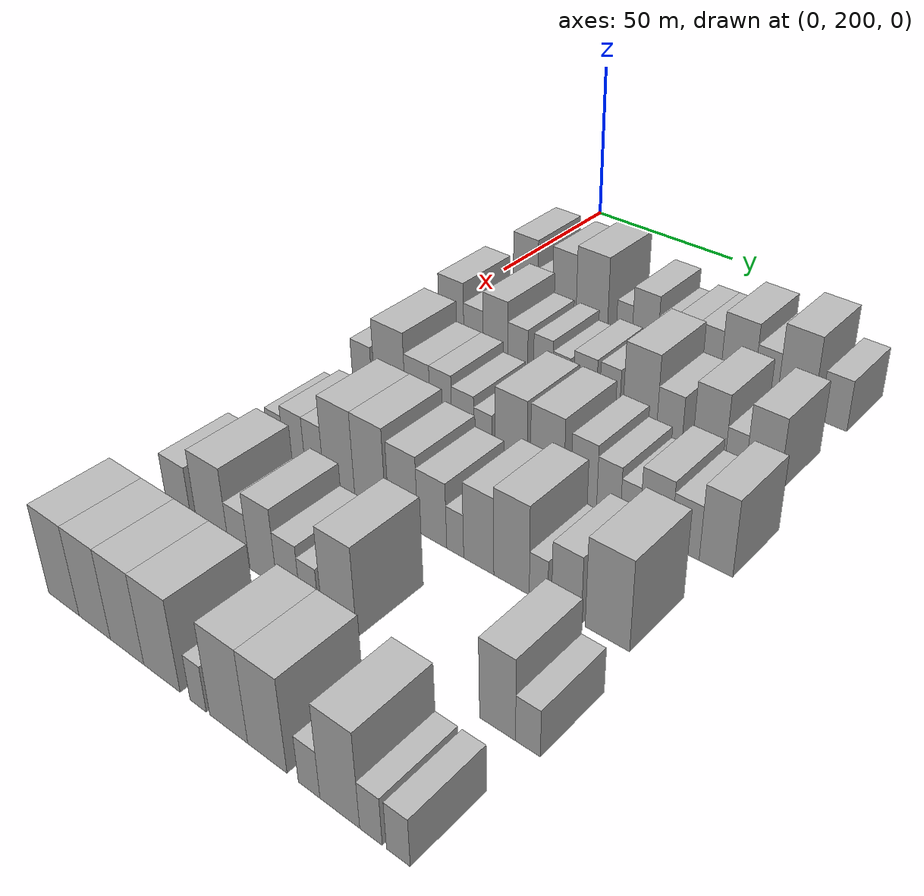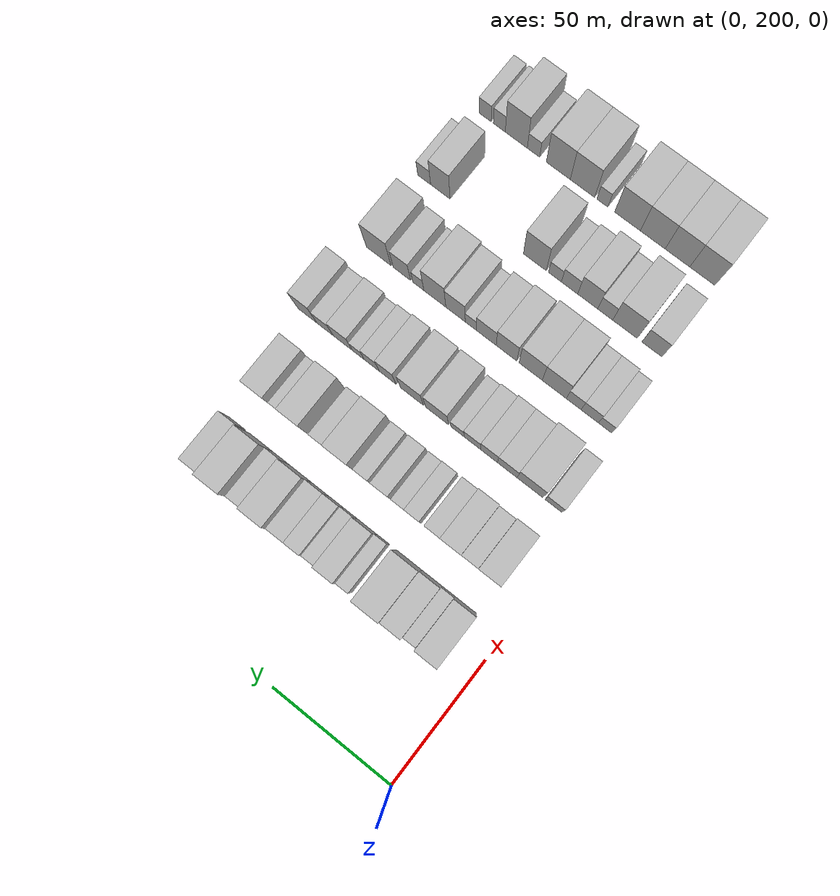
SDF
<sdf version="1.6">
 <world name="default">
  <model name="building_87">
   <static>1</static>
   <pose>50.0000 216.3549 0 0.000000 0.000000 0.000000</pose>
   <link name="link">
    <pose>0 0 10.50 0 0 0</pose>
    <collision name="collision"><geometry><box><size>20.0000 9.0935 21.0000</size></box></geometry></collision>
    <visual name="visual">
     <cast_shadows>0</cast_shadows>
     <geometry><box><size>20.0000 9.0935 21.0000</size></box></geometry>
     <material>
      <script>
       <uri>model://HANNAS_wall/materials/scripts</uri>
       <uri>model://HANNAS_wall/materials/textures</uri>
       <name>vrc/HANNAS_wall</name>
      </script>
     </material>
    </visual>
   </link>
  </model>
  <model name="building_88">
   <static>1</static>
   <pose>50.0000 223.5654 0 0.000000 0.000000 0.000000</pose>
   <link name="link">
    <pose>0 0 6.00 0 0 0</pose>
    <collision name="collision"><geometry><box><size>20.0000 5.3274 12.0000</size></box></geometry></collision>
    <visual name="visual">
     <cast_shadows>0</cast_shadows>
     <geometry><box><size>20.0000 5.3274 12.0000</size></box></geometry>
     <material>
      <script>
       <uri>model://HANNAS_wall/materials/scripts</uri>
       <uri>model://HANNAS_wall/materials/textures</uri>
       <name>vrc/HANNAS_wall</name>
      </script>
     </material>
    </visual>
   </link>
  </model>
  <model name="building_89">
   <static>1</static>
   <pose>50.0000 230.4647 0 0.000000 0.000000 0.000000</pose>
   <link name="link">
    <pose>0 0 10.50 0 0 0</pose>
    <collision name="collision"><geometry><box><size>20.0000 8.4712 21.0000</size></box></geometry></collision>
    <visual name="visual">
     <cast_shadows>0</cast_shadows>
     <geometry><box><size>20.0000 8.4712 21.0000</size></box></geometry>
     <material>
      <script>
       <uri>model://HANNAS_wall/materials/scripts</uri>
       <uri>model://HANNAS_wall/materials/textures</uri>
       <name>vrc/HANNAS_wall</name>
      </script>
     </material>
    </visual>
   </link>
  </model>
  <model name="building_90">
   <static>1</static>
   <pose>50.0000 240.1849 0 0.000000 0.000000 0.000000</pose>
   <link name="link">
    <pose>0 0 12.00 0 0 0</pose>
    <collision name="collision"><geometry><box><size>20.0000 10.9693 24.0000</size></box></geometry></collision>
    <visual name="visual">
     <cast_shadows>0</cast_shadows>
     <geometry><box><size>20.0000 10.9693 24.0000</size></box></geometry>
     <material>
      <script>
       <uri>model://HANNAS_wall/materials/scripts</uri>
       <uri>model://HANNAS_wall/materials/textures</uri>
       <name>vrc/HANNAS_wall</name>
      </script>
     </material>
    </visual>
   </link>
  </model>
  <model name="building_91">
   <static>1</static>
   <pose>50.0000 251.3293 0 0.000000 0.000000 0.000000</pose>
   <link name="link">
    <pose>0 0 6.00 0 0 0</pose>
    <collision name="collision"><geometry><box><size>20.0000 5.3196 12.0000</size></box></geometry></collision>
    <visual name="visual">
     <cast_shadows>0</cast_shadows>
     <geometry><box><size>20.0000 5.3196 12.0000</size></box></geometry>
     <material>
      <script>
       <uri>model://HANNAS_wall/materials/scripts</uri>
       <uri>model://HANNAS_wall/materials/textures</uri>
       <name>vrc/HANNAS_wall</name>
      </script>
     </material>
    </visual>
   </link>
  </model>
  <model name="building_92">
   <static>1</static>
   <pose>50.0000 258.2015 0 0.000000 0.000000 0.000000</pose>
   <link name="link">
    <pose>0 0 9.00 0 0 0</pose>
    <collision name="collision"><geometry><box><size>20.0000 8.4248 18.0000</size></box></geometry></collision>
    <visual name="visual">
     <cast_shadows>0</cast_shadows>
     <geometry><box><size>20.0000 8.4248 18.0000</size></box></geometry>
     <material>
      <script>
       <uri>model://HANNAS_wall/materials/scripts</uri>
       <uri>model://HANNAS_wall/materials/textures</uri>
       <name>vrc/HANNAS_wall</name>
      </script>
     </material>
    </visual>
   </link>
  </model>
  <model name="building_93">
   <static>1</static>
   <pose>50.0000 265.3493 0 0.000000 0.000000 0.000000</pose>
   <link name="link">
    <pose>0 0 6.00 0 0 0</pose>
    <collision name="collision"><geometry><box><size>20.0000 5.8709 12.0000</size></box></geometry></collision>
    <visual name="visual">
     <cast_shadows>0</cast_shadows>
     <geometry><box><size>20.0000 5.8709 12.0000</size></box></geometry>
     <material>
      <script>
       <uri>model://HANNAS_wall/materials/scripts</uri>
       <uri>model://HANNAS_wall/materials/textures</uri>
       <name>vrc/HANNAS_wall</name>
      </script>
     </material>
    </visual>
   </link>
  </model>
  <model name="building_94">
   <static>1</static>
   <pose>50.0000 271.6500 0 0.000000 0.000000 0.000000</pose>
   <link name="link">
    <pose>0 0 7.50 0 0 0</pose>
    <collision name="collision"><geometry><box><size>20.0000 6.7306 15.0000</size></box></geometry></collision>
    <visual name="visual">
     <cast_shadows>0</cast_shadows>
     <geometry><box><size>20.0000 6.7306 15.0000</size></box></geometry>
     <material>
      <script>
       <uri>model://HANNAS_wall/materials/scripts</uri>
       <uri>model://HANNAS_wall/materials/textures</uri>
       <name>vrc/HANNAS_wall</name>
      </script>
     </material>
    </visual>
   </link>
  </model>
  <model name="building_95">
   <static>1</static>
   <pose>50.0000 278.6958 0 0.000000 0.000000 0.000000</pose>
   <link name="link">
    <pose>0 0 7.50 0 0 0</pose>
    <collision name="collision"><geometry><box><size>20.0000 7.3609 15.0000</size></box></geometry></collision>
    <visual name="visual">
     <cast_shadows>0</cast_shadows>
     <geometry><box><size>20.0000 7.3609 15.0000</size></box></geometry>
     <material>
      <script>
       <uri>model://HANNAS_wall/materials/scripts</uri>
       <uri>model://HANNAS_wall/materials/textures</uri>
       <name>vrc/HANNAS_wall</name>
      </script>
     </material>
    </visual>
   </link>
  </model>
  <model name="building_96">
   <static>1</static>
   <pose>50.0000 287.3988 0 0.000000 0.000000 0.000000</pose>
   <link name="link">
    <pose>0 0 10.50 0 0 0</pose>
    <collision name="collision"><geometry><box><size>20.0000 10.0452 21.0000</size></box></geometry></collision>
    <visual name="visual">
     <cast_shadows>0</cast_shadows>
     <geometry><box><size>20.0000 10.0452 21.0000</size></box></geometry>
     <material>
      <script>
       <uri>model://HANNAS_wall/materials/scripts</uri>
       <uri>model://HANNAS_wall/materials/textures</uri>
       <name>vrc/HANNAS_wall</name>
      </script>
     </material>
    </visual>
   </link>
  </model>
  <model name="building_97">
   <static>1</static>
   <pose>50.0000 295.8725 0 0.000000 0.000000 0.000000</pose>
   <link name="link">
    <pose>0 0 7.50 0 0 0</pose>
    <collision name="collision"><geometry><box><size>20.0000 6.9023 15.0000</size></box></geometry></collision>
    <visual name="visual">
     <cast_shadows>0</cast_shadows>
     <geometry><box><size>20.0000 6.9023 15.0000</size></box></geometry>
     <material>
      <script>
       <uri>model://HANNAS_wall/materials/scripts</uri>
       <uri>model://HANNAS_wall/materials/textures</uri>
       <name>vrc/HANNAS_wall</name>
      </script>
     </material>
    </visual>
   </link>
  </model>
  <model name="building_98">
   <static>1</static>
   <pose>50.0000 304.4856 0 0.000000 0.000000 0.000000</pose>
   <link name="link">
    <pose>0 0 12.00 0 0 0</pose>
    <collision name="collision"><geometry><box><size>20.0000 10.3239 24.0000</size></box></geometry></collision>
    <visual name="visual">
     <cast_shadows>0</cast_shadows>
     <geometry><box><size>20.0000 10.3239 24.0000</size></box></geometry>
     <material>
      <script>
       <uri>model://HANNAS_wall/materials/scripts</uri>
       <uri>model://HANNAS_wall/materials/textures</uri>
       <name>vrc/HANNAS_wall</name>
      </script>
     </material>
    </visual>
   </link>
  </model>
  <model name="building_99">
   <static>1</static>
   <pose>50.0000 315.3919 0 0.000000 0.000000 0.000000</pose>
   <link name="link">
    <pose>0 0 7.50 0 0 0</pose>
    <collision name="collision"><geometry><box><size>20.0000 7.4886 15.0000</size></box></geometry></collision>
    <visual name="visual">
     <cast_shadows>0</cast_shadows>
     <geometry><box><size>20.0000 7.4886 15.0000</size></box></geometry>
     <material>
      <script>
       <uri>model://HANNAS_wall/materials/scripts</uri>
       <uri>model://HANNAS_wall/materials/textures</uri>
       <name>vrc/HANNAS_wall</name>
      </script>
     </material>
    </visual>
   </link>
  </model>
  <model name="building_215">
   <static>1</static>
   <pose>82.0000 215.9079 0 0.000000 0.000000 0.000000</pose>
   <link name="link">
    <pose>0 0 10.50 0 0 0</pose>
    <collision name="collision"><geometry><box><size>20.0000 9.0055 21.0000</size></box></geometry></collision>
    <visual name="visual">
     <cast_shadows>0</cast_shadows>
     <geometry><box><size>20.0000 9.0055 21.0000</size></box></geometry>
     <material>
      <script>
       <uri>model://HANNAS_wall/materials/scripts</uri>
       <uri>model://HANNAS_wall/materials/textures</uri>
       <name>vrc/HANNAS_wall</name>
      </script>
     </material>
    </visual>
   </link>
  </model>
  <model name="building_216">
   <static>1</static>
   <pose>82.0000 223.8811 0 0.000000 0.000000 0.000000</pose>
   <link name="link">
    <pose>0 0 7.50 0 0 0</pose>
    <collision name="collision"><geometry><box><size>20.0000 6.9409 15.0000</size></box></geometry></collision>
    <visual name="visual">
     <cast_shadows>0</cast_shadows>
     <geometry><box><size>20.0000 6.9409 15.0000</size></box></geometry>
     <material>
      <script>
       <uri>model://HANNAS_wall/materials/scripts</uri>
       <uri>model://HANNAS_wall/materials/textures</uri>
       <name>vrc/HANNAS_wall</name>
      </script>
     </material>
    </visual>
   </link>
  </model>
  <model name="building_217">
   <static>1</static>
   <pose>82.0000 231.6393 0 0.000000 0.000000 0.000000</pose>
   <link name="link">
    <pose>0 0 10.50 0 0 0</pose>
    <collision name="collision"><geometry><box><size>20.0000 8.5755 21.0000</size></box></geometry></collision>
    <visual name="visual">
     <cast_shadows>0</cast_shadows>
     <geometry><box><size>20.0000 8.5755 21.0000</size></box></geometry>
     <material>
      <script>
       <uri>model://HANNAS_wall/materials/scripts</uri>
       <uri>model://HANNAS_wall/materials/textures</uri>
       <name>vrc/HANNAS_wall</name>
      </script>
     </material>
    </visual>
   </link>
  </model>
  <model name="building_218">
   <static>1</static>
   <pose>82.0000 239.3026 0 0.000000 0.000000 0.000000</pose>
   <link name="link">
    <pose>0 0 7.50 0 0 0</pose>
    <collision name="collision"><geometry><box><size>20.0000 6.7512 15.0000</size></box></geometry></collision>
    <visual name="visual">
     <cast_shadows>0</cast_shadows>
     <geometry><box><size>20.0000 6.7512 15.0000</size></box></geometry>
     <material>
      <script>
       <uri>model://HANNAS_wall/materials/scripts</uri>
       <uri>model://HANNAS_wall/materials/textures</uri>
       <name>vrc/HANNAS_wall</name>
      </script>
     </material>
    </visual>
   </link>
  </model>
  <model name="building_219">
   <static>1</static>
   <pose>82.0000 247.8361 0 0.000000 0.000000 0.000000</pose>
   <link name="link">
    <pose>0 0 7.50 0 0 0</pose>
    <collision name="collision"><geometry><box><size>20.0000 6.3158 15.0000</size></box></geometry></collision>
    <visual name="visual">
     <cast_shadows>0</cast_shadows>
     <geometry><box><size>20.0000 6.3158 15.0000</size></box></geometry>
     <material>
      <script>
       <uri>model://HANNAS_wall/materials/scripts</uri>
       <uri>model://HANNAS_wall/materials/textures</uri>
       <name>vrc/HANNAS_wall</name>
      </script>
     </material>
    </visual>
   </link>
  </model>
  <model name="building_220">
   <static>1</static>
   <pose>82.0000 253.8731 0 0.000000 0.000000 0.000000</pose>
   <link name="link">
    <pose>0 0 6.00 0 0 0</pose>
    <collision name="collision"><geometry><box><size>20.0000 5.7582 12.0000</size></box></geometry></collision>
    <visual name="visual">
     <cast_shadows>0</cast_shadows>
     <geometry><box><size>20.0000 5.7582 12.0000</size></box></geometry>
     <material>
      <script>
       <uri>model://HANNAS_wall/materials/scripts</uri>
       <uri>model://HANNAS_wall/materials/textures</uri>
       <name>vrc/HANNAS_wall</name>
      </script>
     </material>
    </visual>
   </link>
  </model>
  <model name="building_221">
   <static>1</static>
   <pose>82.0000 261.4055 0 0.000000 0.000000 0.000000</pose>
   <link name="link">
    <pose>0 0 7.50 0 0 0</pose>
    <collision name="collision"><geometry><box><size>20.0000 7.3066 15.0000</size></box></geometry></collision>
    <visual name="visual">
     <cast_shadows>0</cast_shadows>
     <geometry><box><size>20.0000 7.3066 15.0000</size></box></geometry>
     <material>
      <script>
       <uri>model://HANNAS_wall/materials/scripts</uri>
       <uri>model://HANNAS_wall/materials/textures</uri>
       <name>vrc/HANNAS_wall</name>
      </script>
     </material>
    </visual>
   </link>
  </model>
  <model name="building_222">
   <static>1</static>
   <pose>82.0000 269.1686 0 0.000000 0.000000 0.000000</pose>
   <link name="link">
    <pose>0 0 7.50 0 0 0</pose>
    <collision name="collision"><geometry><box><size>20.0000 6.2196 15.0000</size></box></geometry></collision>
    <visual name="visual">
     <cast_shadows>0</cast_shadows>
     <geometry><box><size>20.0000 6.2196 15.0000</size></box></geometry>
     <material>
      <script>
       <uri>model://HANNAS_wall/materials/scripts</uri>
       <uri>model://HANNAS_wall/materials/textures</uri>
       <name>vrc/HANNAS_wall</name>
      </script>
     </material>
    </visual>
   </link>
  </model>
  <model name="building_223">
   <static>1</static>
   <pose>82.0000 278.3743 0 0.000000 0.000000 0.000000</pose>
   <link name="link">
    <pose>0 0 12.00 0 0 0</pose>
    <collision name="collision"><geometry><box><size>20.0000 10.1920 24.0000</size></box></geometry></collision>
    <visual name="visual">
     <cast_shadows>0</cast_shadows>
     <geometry><box><size>20.0000 10.1920 24.0000</size></box></geometry>
     <material>
      <script>
       <uri>model://HANNAS_wall/materials/scripts</uri>
       <uri>model://HANNAS_wall/materials/textures</uri>
       <name>vrc/HANNAS_wall</name>
      </script>
     </material>
    </visual>
   </link>
  </model>
  <model name="building_224">
   <static>1</static>
   <pose>82.0000 287.2166 0 0.000000 0.000000 0.000000</pose>
   <link name="link">
    <pose>0 0 7.50 0 0 0</pose>
    <collision name="collision"><geometry><box><size>20.0000 7.4926 15.0000</size></box></geometry></collision>
    <visual name="visual">
     <cast_shadows>0</cast_shadows>
     <geometry><box><size>20.0000 7.4926 15.0000</size></box></geometry>
     <material>
      <script>
       <uri>model://HANNAS_wall/materials/scripts</uri>
       <uri>model://HANNAS_wall/materials/textures</uri>
       <name>vrc/HANNAS_wall</name>
      </script>
     </material>
    </visual>
   </link>
  </model>
  <model name="building_225">
   <static>1</static>
   <pose>82.0000 298.5455 0 0.000000 0.000000 0.000000</pose>
   <link name="link">
    <pose>0 0 10.50 0 0 0</pose>
    <collision name="collision"><geometry><box><size>20.0000 9.1652 21.0000</size></box></geometry></collision>
    <visual name="visual">
     <cast_shadows>0</cast_shadows>
     <geometry><box><size>20.0000 9.1652 21.0000</size></box></geometry>
     <material>
      <script>
       <uri>model://HANNAS_wall/materials/scripts</uri>
       <uri>model://HANNAS_wall/materials/textures</uri>
       <name>vrc/HANNAS_wall</name>
      </script>
     </material>
    </visual>
   </link>
  </model>
  <model name="building_226">
   <static>1</static>
   <pose>82.0000 305.9645 0 0.000000 0.000000 0.000000</pose>
   <link name="link">
    <pose>0 0 6.00 0 0 0</pose>
    <collision name="collision"><geometry><box><size>20.0000 5.6727 12.0000</size></box></geometry></collision>
    <visual name="visual">
     <cast_shadows>0</cast_shadows>
     <geometry><box><size>20.0000 5.6727 12.0000</size></box></geometry>
     <material>
      <script>
       <uri>model://HANNAS_wall/materials/scripts</uri>
       <uri>model://HANNAS_wall/materials/textures</uri>
       <name>vrc/HANNAS_wall</name>
      </script>
     </material>
    </visual>
   </link>
  </model>
  <model name="building_227">
   <static>1</static>
   <pose>82.0000 313.4200 0 0.000000 0.000000 0.000000</pose>
   <link name="link">
    <pose>0 0 10.50 0 0 0</pose>
    <collision name="collision"><geometry><box><size>20.0000 9.2383 21.0000</size></box></geometry></collision>
    <visual name="visual">
     <cast_shadows>0</cast_shadows>
     <geometry><box><size>20.0000 9.2383 21.0000</size></box></geometry>
     <material>
      <script>
       <uri>model://HANNAS_wall/materials/scripts</uri>
       <uri>model://HANNAS_wall/materials/textures</uri>
       <name>vrc/HANNAS_wall</name>
      </script>
     </material>
    </visual>
   </link>
  </model>
  <model name="building_337">
   <static>1</static>
   <pose>114.0000 213.1651 0 0.000000 0.000000 0.000000</pose>
   <link name="link">
    <pose>0 0 7.50 0 0 0</pose>
    <collision name="collision"><geometry><box><size>20.0000 7.0536 15.0000</size></box></geometry></collision>
    <visual name="visual">
     <cast_shadows>0</cast_shadows>
     <geometry><box><size>20.0000 7.0536 15.0000</size></box></geometry>
     <material>
      <script>
       <uri>model://HANNAS_wall/materials/scripts</uri>
       <uri>model://HANNAS_wall/materials/textures</uri>
       <name>vrc/HANNAS_wall</name>
      </script>
     </material>
    </visual>
   </link>
  </model>
  <model name="building_338">
   <static>1</static>
   <pose>114.0000 223.1370 0 0.000000 0.000000 0.000000</pose>
   <link name="link">
    <pose>0 0 12.00 0 0 0</pose>
    <collision name="collision"><geometry><box><size>20.0000 10.8902 24.0000</size></box></geometry></collision>
    <visual name="visual">
     <cast_shadows>0</cast_shadows>
     <geometry><box><size>20.0000 10.8902 24.0000</size></box></geometry>
     <material>
      <script>
       <uri>model://HANNAS_wall/materials/scripts</uri>
       <uri>model://HANNAS_wall/materials/textures</uri>
       <name>vrc/HANNAS_wall</name>
      </script>
     </material>
    </visual>
   </link>
  </model>
  <model name="building_339">
   <static>1</static>
   <pose>114.0000 232.8138 0 0.000000 0.000000 0.000000</pose>
   <link name="link">
    <pose>0 0 9.00 0 0 0</pose>
    <collision name="collision"><geometry><box><size>20.0000 8.4633 18.0000</size></box></geometry></collision>
    <visual name="visual">
     <cast_shadows>0</cast_shadows>
     <geometry><box><size>20.0000 8.4633 18.0000</size></box></geometry>
     <material>
      <script>
       <uri>model://HANNAS_wall/materials/scripts</uri>
       <uri>model://HANNAS_wall/materials/textures</uri>
       <name>vrc/HANNAS_wall</name>
      </script>
     </material>
    </visual>
   </link>
  </model>
  <model name="building_340">
   <static>1</static>
   <pose>114.0000 240.6525 0 0.000000 0.000000 0.000000</pose>
   <link name="link">
    <pose>0 0 9.00 0 0 0</pose>
    <collision name="collision"><geometry><box><size>20.0000 7.2143 18.0000</size></box></geometry></collision>
    <visual name="visual">
     <cast_shadows>0</cast_shadows>
     <geometry><box><size>20.0000 7.2143 18.0000</size></box></geometry>
     <material>
      <script>
       <uri>model://HANNAS_wall/materials/scripts</uri>
       <uri>model://HANNAS_wall/materials/textures</uri>
       <name>vrc/HANNAS_wall</name>
      </script>
     </material>
    </visual>
   </link>
  </model>
  <model name="building_341">
   <static>1</static>
   <pose>114.0000 247.8487 0 0.000000 0.000000 0.000000</pose>
   <link name="link">
    <pose>0 0 7.50 0 0 0</pose>
    <collision name="collision"><geometry><box><size>20.0000 7.1780 15.0000</size></box></geometry></collision>
    <visual name="visual">
     <cast_shadows>0</cast_shadows>
     <geometry><box><size>20.0000 7.1780 15.0000</size></box></geometry>
     <material>
      <script>
       <uri>model://HANNAS_wall/materials/scripts</uri>
       <uri>model://HANNAS_wall/materials/textures</uri>
       <name>vrc/HANNAS_wall</name>
      </script>
     </material>
    </visual>
   </link>
  </model>
  <model name="building_342">
   <static>1</static>
   <pose>114.0000 254.2826 0 0.000000 0.000000 0.000000</pose>
   <link name="link">
    <pose>0 0 6.00 0 0 0</pose>
    <collision name="collision"><geometry><box><size>20.0000 5.6898 12.0000</size></box></geometry></collision>
    <visual name="visual">
     <cast_shadows>0</cast_shadows>
     <geometry><box><size>20.0000 5.6898 12.0000</size></box></geometry>
     <material>
      <script>
       <uri>model://HANNAS_wall/materials/scripts</uri>
       <uri>model://HANNAS_wall/materials/textures</uri>
       <name>vrc/HANNAS_wall</name>
      </script>
     </material>
    </visual>
   </link>
  </model>
  <model name="building_343">
   <static>1</static>
   <pose>114.0000 263.0938 0 0.000000 0.000000 0.000000</pose>
   <link name="link">
    <pose>0 0 10.50 0 0 0</pose>
    <collision name="collision"><geometry><box><size>20.0000 9.9326 21.0000</size></box></geometry></collision>
    <visual name="visual">
     <cast_shadows>0</cast_shadows>
     <geometry><box><size>20.0000 9.9326 21.0000</size></box></geometry>
     <material>
      <script>
       <uri>model://HANNAS_wall/materials/scripts</uri>
       <uri>model://HANNAS_wall/materials/textures</uri>
       <name>vrc/HANNAS_wall</name>
      </script>
     </material>
    </visual>
   </link>
  </model>
  <model name="building_344">
   <static>1</static>
   <pose>114.0000 274.0446 0 0.000000 0.000000 0.000000</pose>
   <link name="link">
    <pose>0 0 10.50 0 0 0</pose>
    <collision name="collision"><geometry><box><size>20.0000 9.9690 21.0000</size></box></geometry></collision>
    <visual name="visual">
     <cast_shadows>0</cast_shadows>
     <geometry><box><size>20.0000 9.9690 21.0000</size></box></geometry>
     <material>
      <script>
       <uri>model://HANNAS_wall/materials/scripts</uri>
       <uri>model://HANNAS_wall/materials/textures</uri>
       <name>vrc/HANNAS_wall</name>
      </script>
     </material>
    </visual>
   </link>
  </model>
  <model name="building_345">
   <static>1</static>
   <pose>114.0000 284.7476 0 0.000000 0.000000 0.000000</pose>
   <link name="link">
    <pose>0 0 9.00 0 0 0</pose>
    <collision name="collision"><geometry><box><size>20.0000 7.4371 18.0000</size></box></geometry></collision>
    <visual name="visual">
     <cast_shadows>0</cast_shadows>
     <geometry><box><size>20.0000 7.4371 18.0000</size></box></geometry>
     <material>
      <script>
       <uri>model://HANNAS_wall/materials/scripts</uri>
       <uri>model://HANNAS_wall/materials/textures</uri>
       <name>vrc/HANNAS_wall</name>
      </script>
     </material>
    </visual>
   </link>
  </model>
  <model name="building_346">
   <static>1</static>
   <pose>114.0000 291.7757 0 0.000000 0.000000 0.000000</pose>
   <link name="link">
    <pose>0 0 7.50 0 0 0</pose>
    <collision name="collision"><geometry><box><size>20.0000 6.6192 15.0000</size></box></geometry></collision>
    <visual name="visual">
     <cast_shadows>0</cast_shadows>
     <geometry><box><size>20.0000 6.6192 15.0000</size></box></geometry>
     <material>
      <script>
       <uri>model://HANNAS_wall/materials/scripts</uri>
       <uri>model://HANNAS_wall/materials/textures</uri>
       <name>vrc/HANNAS_wall</name>
      </script>
     </material>
    </visual>
   </link>
  </model>
  <model name="building_347">
   <static>1</static>
   <pose>114.0000 297.7409 0 0.000000 0.000000 0.000000</pose>
   <link name="link">
    <pose>0 0 6.00 0 0 0</pose>
    <collision name="collision"><geometry><box><size>20.0000 5.3111 12.0000</size></box></geometry></collision>
    <visual name="visual">
     <cast_shadows>0</cast_shadows>
     <geometry><box><size>20.0000 5.3111 12.0000</size></box></geometry>
     <material>
      <script>
       <uri>model://HANNAS_wall/materials/scripts</uri>
       <uri>model://HANNAS_wall/materials/textures</uri>
       <name>vrc/HANNAS_wall</name>
      </script>
     </material>
    </visual>
   </link>
  </model>
  <model name="building_348">
   <static>1</static>
   <pose>114.0000 304.6243 0 0.000000 0.000000 0.000000</pose>
   <link name="link">
    <pose>0 0 9.00 0 0 0</pose>
    <collision name="collision"><geometry><box><size>20.0000 8.4557 18.0000</size></box></geometry></collision>
    <visual name="visual">
     <cast_shadows>0</cast_shadows>
     <geometry><box><size>20.0000 8.4557 18.0000</size></box></geometry>
     <material>
      <script>
       <uri>model://HANNAS_wall/materials/scripts</uri>
       <uri>model://HANNAS_wall/materials/textures</uri>
       <name>vrc/HANNAS_wall</name>
      </script>
     </material>
    </visual>
   </link>
  </model>
  <model name="building_349">
   <static>1</static>
   <pose>114.0000 312.5036 0 0.000000 0.000000 0.000000</pose>
   <link name="link">
    <pose>0 0 7.50 0 0 0</pose>
    <collision name="collision"><geometry><box><size>20.0000 7.3030 15.0000</size></box></geometry></collision>
    <visual name="visual">
     <cast_shadows>0</cast_shadows>
     <geometry><box><size>20.0000 7.3030 15.0000</size></box></geometry>
     <material>
      <script>
       <uri>model://HANNAS_wall/materials/scripts</uri>
       <uri>model://HANNAS_wall/materials/textures</uri>
       <name>vrc/HANNAS_wall</name>
      </script>
     </material>
    </visual>
   </link>
  </model>
  <model name="building_350">
   <static>1</static>
   <pose>114.0000 320.4050 0 0.000000 0.000000 0.000000</pose>
   <link name="link">
    <pose>0 0 10.50 0 0 0</pose>
    <collision name="collision"><geometry><box><size>20.0000 8.4999 21.0000</size></box></geometry></collision>
    <visual name="visual">
     <cast_shadows>0</cast_shadows>
     <geometry><box><size>20.0000 8.4999 21.0000</size></box></geometry>
     <material>
      <script>
       <uri>model://HANNAS_wall/materials/scripts</uri>
       <uri>model://HANNAS_wall/materials/textures</uri>
       <name>vrc/HANNAS_wall</name>
      </script>
     </material>
    </visual>
   </link>
  </model>
  <model name="building_452">
   <static>1</static>
   <pose>146.0000 215.2975 0 0.000000 0.000000 0.000000</pose>
   <link name="link">
    <pose>0 0 6.00 0 0 0</pose>
    <collision name="collision"><geometry><box><size>20.0000 5.6191 12.0000</size></box></geometry></collision>
    <visual name="visual">
     <cast_shadows>0</cast_shadows>
     <geometry><box><size>20.0000 5.6191 12.0000</size></box></geometry>
     <material>
      <script>
       <uri>model://HANNAS_wall/materials/scripts</uri>
       <uri>model://HANNAS_wall/materials/textures</uri>
       <name>vrc/HANNAS_wall</name>
      </script>
     </material>
    </visual>
   </link>
  </model>
  <model name="building_453">
   <static>1</static>
   <pose>146.0000 221.8192 0 0.000000 0.000000 0.000000</pose>
   <link name="link">
    <pose>0 0 7.50 0 0 0</pose>
    <collision name="collision"><geometry><box><size>20.0000 7.4244 15.0000</size></box></geometry></collision>
    <visual name="visual">
     <cast_shadows>0</cast_shadows>
     <geometry><box><size>20.0000 7.4244 15.0000</size></box></geometry>
     <material>
      <script>
       <uri>model://HANNAS_wall/materials/scripts</uri>
       <uri>model://HANNAS_wall/materials/textures</uri>
       <name>vrc/HANNAS_wall</name>
      </script>
     </material>
    </visual>
   </link>
  </model>
  <model name="building_454">
   <static>1</static>
   <pose>146.0000 228.6865 0 0.000000 0.000000 0.000000</pose>
   <link name="link">
    <pose>0 0 7.50 0 0 0</pose>
    <collision name="collision"><geometry><box><size>20.0000 6.3102 15.0000</size></box></geometry></collision>
    <visual name="visual">
     <cast_shadows>0</cast_shadows>
     <geometry><box><size>20.0000 6.3102 15.0000</size></box></geometry>
     <material>
      <script>
       <uri>model://HANNAS_wall/materials/scripts</uri>
       <uri>model://HANNAS_wall/materials/textures</uri>
       <name>vrc/HANNAS_wall</name>
      </script>
     </material>
    </visual>
   </link>
  </model>
  <model name="building_455">
   <static>1</static>
   <pose>146.0000 237.0497 0 0.000000 0.000000 0.000000</pose>
   <link name="link">
    <pose>0 0 12.00 0 0 0</pose>
    <collision name="collision"><geometry><box><size>20.0000 10.4162 24.0000</size></box></geometry></collision>
    <visual name="visual">
     <cast_shadows>0</cast_shadows>
     <geometry><box><size>20.0000 10.4162 24.0000</size></box></geometry>
     <material>
      <script>
       <uri>model://HANNAS_wall/materials/scripts</uri>
       <uri>model://HANNAS_wall/materials/textures</uri>
       <name>vrc/HANNAS_wall</name>
      </script>
     </material>
    </visual>
   </link>
  </model>
  <model name="building_456">
   <static>1</static>
   <pose>146.0000 247.2807 0 0.000000 0.000000 0.000000</pose>
   <link name="link">
    <pose>0 0 12.00 0 0 0</pose>
    <collision name="collision"><geometry><box><size>20.0000 10.0458 24.0000</size></box></geometry></collision>
    <visual name="visual">
     <cast_shadows>0</cast_shadows>
     <geometry><box><size>20.0000 10.0458 24.0000</size></box></geometry>
     <material>
      <script>
       <uri>model://HANNAS_wall/materials/scripts</uri>
       <uri>model://HANNAS_wall/materials/textures</uri>
       <name>vrc/HANNAS_wall</name>
      </script>
     </material>
    </visual>
   </link>
  </model>
  <model name="building_457">
   <static>1</static>
   <pose>146.0000 257.7965 0 0.000000 0.000000 0.000000</pose>
   <link name="link">
    <pose>0 0 10.50 0 0 0</pose>
    <collision name="collision"><geometry><box><size>20.0000 8.9857 21.0000</size></box></geometry></collision>
    <visual name="visual">
     <cast_shadows>0</cast_shadows>
     <geometry><box><size>20.0000 8.9857 21.0000</size></box></geometry>
     <material>
      <script>
       <uri>model://HANNAS_wall/materials/scripts</uri>
       <uri>model://HANNAS_wall/materials/textures</uri>
       <name>vrc/HANNAS_wall</name>
      </script>
     </material>
    </visual>
   </link>
  </model>
  <model name="building_458">
   <static>1</static>
   <pose>146.0000 266.5924 0 0.000000 0.000000 0.000000</pose>
   <link name="link">
    <pose>0 0 9.00 0 0 0</pose>
    <collision name="collision"><geometry><box><size>20.0000 8.6062 18.0000</size></box></geometry></collision>
    <visual name="visual">
     <cast_shadows>0</cast_shadows>
     <geometry><box><size>20.0000 8.6062 18.0000</size></box></geometry>
     <material>
      <script>
       <uri>model://HANNAS_wall/materials/scripts</uri>
       <uri>model://HANNAS_wall/materials/textures</uri>
       <name>vrc/HANNAS_wall</name>
      </script>
     </material>
    </visual>
   </link>
  </model>
  <model name="building_459">
   <static>1</static>
   <pose>146.0000 273.3758 0 0.000000 0.000000 0.000000</pose>
   <link name="link">
    <pose>0 0 6.00 0 0 0</pose>
    <collision name="collision"><geometry><box><size>20.0000 4.9606 12.0000</size></box></geometry></collision>
    <visual name="visual">
     <cast_shadows>0</cast_shadows>
     <geometry><box><size>20.0000 4.9606 12.0000</size></box></geometry>
     <material>
      <script>
       <uri>model://HANNAS_wall/materials/scripts</uri>
       <uri>model://HANNAS_wall/materials/textures</uri>
       <name>vrc/HANNAS_wall</name>
      </script>
     </material>
    </visual>
   </link>
  </model>
  <model name="building_460">
   <static>1</static>
   <pose>146.0000 280.1520 0 0.000000 0.000000 0.000000</pose>
   <link name="link">
    <pose>0 0 10.50 0 0 0</pose>
    <collision name="collision"><geometry><box><size>20.0000 8.5919 21.0000</size></box></geometry></collision>
    <visual name="visual">
     <cast_shadows>0</cast_shadows>
     <geometry><box><size>20.0000 8.5919 21.0000</size></box></geometry>
     <material>
      <script>
       <uri>model://HANNAS_wall/materials/scripts</uri>
       <uri>model://HANNAS_wall/materials/textures</uri>
       <name>vrc/HANNAS_wall</name>
      </script>
     </material>
    </visual>
   </link>
  </model>
  <model name="building_461">
   <static>1</static>
   <pose>146.0000 289.3242 0 0.000000 0.000000 0.000000</pose>
   <link name="link">
    <pose>0 0 12.00 0 0 0</pose>
    <collision name="collision"><geometry><box><size>20.0000 9.7524 24.0000</size></box></geometry></collision>
    <visual name="visual">
     <cast_shadows>0</cast_shadows>
     <geometry><box><size>20.0000 9.7524 24.0000</size></box></geometry>
     <material>
      <script>
       <uri>model://HANNAS_wall/materials/scripts</uri>
       <uri>model://HANNAS_wall/materials/textures</uri>
       <name>vrc/HANNAS_wall</name>
      </script>
     </material>
    </visual>
   </link>
  </model>
  <model name="building_462">
   <static>1</static>
   <pose>146.0000 296.6710 0 0.000000 0.000000 0.000000</pose>
   <link name="link">
    <pose>0 0 6.00 0 0 0</pose>
    <collision name="collision"><geometry><box><size>20.0000 4.9412 12.0000</size></box></geometry></collision>
    <visual name="visual">
     <cast_shadows>0</cast_shadows>
     <geometry><box><size>20.0000 4.9412 12.0000</size></box></geometry>
     <material>
      <script>
       <uri>model://HANNAS_wall/materials/scripts</uri>
       <uri>model://HANNAS_wall/materials/textures</uri>
       <name>vrc/HANNAS_wall</name>
      </script>
     </material>
    </visual>
   </link>
  </model>
  <model name="building_463">
   <static>1</static>
   <pose>146.0000 304.0058 0 0.000000 0.000000 0.000000</pose>
   <link name="link">
    <pose>0 0 9.00 0 0 0</pose>
    <collision name="collision"><geometry><box><size>20.0000 7.7285 18.0000</size></box></geometry></collision>
    <visual name="visual">
     <cast_shadows>0</cast_shadows>
     <geometry><box><size>20.0000 7.7285 18.0000</size></box></geometry>
     <material>
      <script>
       <uri>model://HANNAS_wall/materials/scripts</uri>
       <uri>model://HANNAS_wall/materials/textures</uri>
       <name>vrc/HANNAS_wall</name>
      </script>
     </material>
    </visual>
   </link>
  </model>
  <model name="building_464">
   <static>1</static>
   <pose>146.0000 314.4130 0 0.000000 0.000000 0.000000</pose>
   <link name="link">
    <pose>0 0 12.00 0 0 0</pose>
    <collision name="collision"><geometry><box><size>20.0000 11.0859 24.0000</size></box></geometry></collision>
    <visual name="visual">
     <cast_shadows>0</cast_shadows>
     <geometry><box><size>20.0000 11.0859 24.0000</size></box></geometry>
     <material>
      <script>
       <uri>model://HANNAS_wall/materials/scripts</uri>
       <uri>model://HANNAS_wall/materials/textures</uri>
       <name>vrc/HANNAS_wall</name>
      </script>
     </material>
    </visual>
   </link>
  </model>
  <model name="building_575">
   <static>1</static>
   <pose>178.0000 218.8680 0 0.000000 0.000000 0.000000</pose>
   <link name="link">
    <pose>0 0 9.00 0 0 0</pose>
    <collision name="collision"><geometry><box><size>20.0000 8.5787 18.0000</size></box></geometry></collision>
    <visual name="visual">
     <cast_shadows>0</cast_shadows>
     <geometry><box><size>20.0000 8.5787 18.0000</size></box></geometry>
     <material>
      <script>
       <uri>model://HANNAS_wall/materials/scripts</uri>
       <uri>model://HANNAS_wall/materials/textures</uri>
       <name>vrc/HANNAS_wall</name>
      </script>
     </material>
    </visual>
   </link>
  </model>
  <model name="building_576">
   <static>1</static>
   <pose>178.0000 230.4734 0 0.000000 0.000000 0.000000</pose>
   <link name="link">
    <pose>0 0 12.00 0 0 0</pose>
    <collision name="collision"><geometry><box><size>20.0000 10.6321 24.0000</size></box></geometry></collision>
    <visual name="visual">
     <cast_shadows>0</cast_shadows>
     <geometry><box><size>20.0000 10.6321 24.0000</size></box></geometry>
     <material>
      <script>
       <uri>model://HANNAS_wall/materials/scripts</uri>
       <uri>model://HANNAS_wall/materials/textures</uri>
       <name>vrc/HANNAS_wall</name>
      </script>
     </material>
    </visual>
   </link>
  </model>
  <model name="building_577">
   <static>1</static>
   <pose>178.0000 239.0753 0 0.000000 0.000000 0.000000</pose>
   <link name="link">
    <pose>0 0 7.50 0 0 0</pose>
    <collision name="collision"><geometry><box><size>20.0000 6.5717 15.0000</size></box></geometry></collision>
    <visual name="visual">
     <cast_shadows>0</cast_shadows>
     <geometry><box><size>20.0000 6.5717 15.0000</size></box></geometry>
     <material>
      <script>
       <uri>model://HANNAS_wall/materials/scripts</uri>
       <uri>model://HANNAS_wall/materials/textures</uri>
       <name>vrc/HANNAS_wall</name>
      </script>
     </material>
    </visual>
   </link>
  </model>
  <model name="building_578">
   <static>1</static>
   <pose>178.0000 246.7070 0 0.000000 0.000000 0.000000</pose>
   <link name="link">
    <pose>0 0 10.50 0 0 0</pose>
    <collision name="collision"><geometry><box><size>20.0000 8.6916 21.0000</size></box></geometry></collision>
    <visual name="visual">
     <cast_shadows>0</cast_shadows>
     <geometry><box><size>20.0000 8.6916 21.0000</size></box></geometry>
     <material>
      <script>
       <uri>model://HANNAS_wall/materials/scripts</uri>
       <uri>model://HANNAS_wall/materials/textures</uri>
       <name>vrc/HANNAS_wall</name>
      </script>
     </material>
    </visual>
   </link>
  </model>
  <model name="building_579">
   <static>1</static>
   <pose>178.0000 254.6203 0 0.000000 0.000000 0.000000</pose>
   <link name="link">
    <pose>0 0 7.50 0 0 0</pose>
    <collision name="collision"><geometry><box><size>20.0000 7.1350 15.0000</size></box></geometry></collision>
    <visual name="visual">
     <cast_shadows>0</cast_shadows>
     <geometry><box><size>20.0000 7.1350 15.0000</size></box></geometry>
     <material>
      <script>
       <uri>model://HANNAS_wall/materials/scripts</uri>
       <uri>model://HANNAS_wall/materials/textures</uri>
       <name>vrc/HANNAS_wall</name>
      </script>
     </material>
    </visual>
   </link>
  </model>
  <model name="building_580">
   <static>1</static>
   <pose>178.0000 260.9955 0 0.000000 0.000000 0.000000</pose>
   <link name="link">
    <pose>0 0 6.00 0 0 0</pose>
    <collision name="collision"><geometry><box><size>20.0000 5.6154 12.0000</size></box></geometry></collision>
    <visual name="visual">
     <cast_shadows>0</cast_shadows>
     <geometry><box><size>20.0000 5.6154 12.0000</size></box></geometry>
     <material>
      <script>
       <uri>model://HANNAS_wall/materials/scripts</uri>
       <uri>model://HANNAS_wall/materials/textures</uri>
       <name>vrc/HANNAS_wall</name>
      </script>
     </material>
    </visual>
   </link>
  </model>
  <model name="building_581">
   <static>1</static>
   <pose>178.0000 269.8414 0 0.000000 0.000000 0.000000</pose>
   <link name="link">
    <pose>0 0 12.00 0 0 0</pose>
    <collision name="collision"><geometry><box><size>20.0000 10.0764 24.0000</size></box></geometry></collision>
    <visual name="visual">
     <cast_shadows>0</cast_shadows>
     <geometry><box><size>20.0000 10.0764 24.0000</size></box></geometry>
     <material>
      <script>
       <uri>model://HANNAS_wall/materials/scripts</uri>
       <uri>model://HANNAS_wall/materials/textures</uri>
       <name>vrc/HANNAS_wall</name>
      </script>
     </material>
    </visual>
   </link>
  </model>
  <model name="building_582">
   <static>1</static>
   <pose>178.0000 312.0609 0 0.000000 0.000000 0.000000</pose>
   <link name="link">
    <pose>0 0 10.50 0 0 0</pose>
    <collision name="collision"><geometry><box><size>20.0000 8.7876 21.0000</size></box></geometry></collision>
    <visual name="visual">
     <cast_shadows>0</cast_shadows>
     <geometry><box><size>20.0000 8.7876 21.0000</size></box></geometry>
     <material>
      <script>
       <uri>model://HANNAS_wall/materials/scripts</uri>
       <uri>model://HANNAS_wall/materials/textures</uri>
       <name>vrc/HANNAS_wall</name>
      </script>
     </material>
    </visual>
   </link>
  </model>
  <model name="building_583">
   <static>1</static>
   <pose>178.0000 319.3793 0 0.000000 0.000000 0.000000</pose>
   <link name="link">
    <pose>0 0 6.00 0 0 0</pose>
    <collision name="collision"><geometry><box><size>20.0000 5.8492 12.0000</size></box></geometry></collision>
    <visual name="visual">
     <cast_shadows>0</cast_shadows>
     <geometry><box><size>20.0000 5.8492 12.0000</size></box></geometry>
     <material>
      <script>
       <uri>model://HANNAS_wall/materials/scripts</uri>
       <uri>model://HANNAS_wall/materials/textures</uri>
       <name>vrc/HANNAS_wall</name>
      </script>
     </material>
    </visual>
   </link>
  </model>
  <model name="building_702">
   <static>1</static>
   <pose>210.0000 220.4122 0 0.000000 0.000000 0.000000</pose>
   <link name="link">
    <pose>0 0 12.00 0 0 0</pose>
    <collision name="collision"><geometry><box><size>20.0000 10.8481 24.0000</size></box></geometry></collision>
    <visual name="visual">
     <cast_shadows>0</cast_shadows>
     <geometry><box><size>20.0000 10.8481 24.0000</size></box></geometry>
     <material>
      <script>
       <uri>model://HANNAS_wall/materials/scripts</uri>
       <uri>model://HANNAS_wall/materials/textures</uri>
       <name>vrc/HANNAS_wall</name>
      </script>
     </material>
    </visual>
   </link>
  </model>
  <model name="building_703">
   <static>1</static>
   <pose>210.0000 231.1827 0 0.000000 0.000000 0.000000</pose>
   <link name="link">
    <pose>0 0 12.00 0 0 0</pose>
    <collision name="collision"><geometry><box><size>20.0000 10.6929 24.0000</size></box></geometry></collision>
    <visual name="visual">
     <cast_shadows>0</cast_shadows>
     <geometry><box><size>20.0000 10.6929 24.0000</size></box></geometry>
     <material>
      <script>
       <uri>model://HANNAS_wall/materials/scripts</uri>
       <uri>model://HANNAS_wall/materials/textures</uri>
       <name>vrc/HANNAS_wall</name>
      </script>
     </material>
    </visual>
   </link>
  </model>
  <model name="building_704">
   <static>1</static>
   <pose>210.0000 241.9742 0 0.000000 0.000000 0.000000</pose>
   <link name="link">
    <pose>0 0 12.00 0 0 0</pose>
    <collision name="collision"><geometry><box><size>20.0000 10.8900 24.0000</size></box></geometry></collision>
    <visual name="visual">
     <cast_shadows>0</cast_shadows>
     <geometry><box><size>20.0000 10.8900 24.0000</size></box></geometry>
     <material>
      <script>
       <uri>model://HANNAS_wall/materials/scripts</uri>
       <uri>model://HANNAS_wall/materials/textures</uri>
       <name>vrc/HANNAS_wall</name>
      </script>
     </material>
    </visual>
   </link>
  </model>
  <model name="building_705">
   <static>1</static>
   <pose>210.0000 253.0547 0 0.000000 0.000000 0.000000</pose>
   <link name="link">
    <pose>0 0 12.00 0 0 0</pose>
    <collision name="collision"><geometry><box><size>20.0000 11.2710 24.0000</size></box></geometry></collision>
    <visual name="visual">
     <cast_shadows>0</cast_shadows>
     <geometry><box><size>20.0000 11.2710 24.0000</size></box></geometry>
     <material>
      <script>
       <uri>model://HANNAS_wall/materials/scripts</uri>
       <uri>model://HANNAS_wall/materials/textures</uri>
       <name>vrc/HANNAS_wall</name>
      </script>
     </material>
    </visual>
   </link>
  </model>
  <model name="building_706">
   <static>1</static>
   <pose>210.0000 264.1111 0 0.000000 0.000000 0.000000</pose>
   <link name="link">
    <pose>0 0 6.00 0 0 0</pose>
    <collision name="collision"><geometry><box><size>20.0000 4.8419 12.0000</size></box></geometry></collision>
    <visual name="visual">
     <cast_shadows>0</cast_shadows>
     <geometry><box><size>20.0000 4.8419 12.0000</size></box></geometry>
     <material>
      <script>
       <uri>model://HANNAS_wall/materials/scripts</uri>
       <uri>model://HANNAS_wall/materials/textures</uri>
       <name>vrc/HANNAS_wall</name>
      </script>
     </material>
    </visual>
   </link>
  </model>
  <model name="building_707">
   <static>1</static>
   <pose>210.0000 272.9650 0 0.000000 0.000000 0.000000</pose>
   <link name="link">
    <pose>0 0 12.00 0 0 0</pose>
    <collision name="collision"><geometry><box><size>20.0000 10.8658 24.0000</size></box></geometry></collision>
    <visual name="visual">
     <cast_shadows>0</cast_shadows>
     <geometry><box><size>20.0000 10.8658 24.0000</size></box></geometry>
     <material>
      <script>
       <uri>model://HANNAS_wall/materials/scripts</uri>
       <uri>model://HANNAS_wall/materials/textures</uri>
       <name>vrc/HANNAS_wall</name>
      </script>
     </material>
    </visual>
   </link>
  </model>
  <model name="building_708">
   <static>1</static>
   <pose>210.0000 283.7361 0 0.000000 0.000000 0.000000</pose>
   <link name="link">
    <pose>0 0 12.00 0 0 0</pose>
    <collision name="collision"><geometry><box><size>20.0000 10.6765 24.0000</size></box></geometry></collision>
    <visual name="visual">
     <cast_shadows>0</cast_shadows>
     <geometry><box><size>20.0000 10.6765 24.0000</size></box></geometry>
     <material>
      <script>
       <uri>model://HANNAS_wall/materials/scripts</uri>
       <uri>model://HANNAS_wall/materials/textures</uri>
       <name>vrc/HANNAS_wall</name>
      </script>
     </material>
    </visual>
   </link>
  </model>
  <model name="building_709">
   <static>1</static>
   <pose>210.0000 294.8660 0 0.000000 0.000000 0.000000</pose>
   <link name="link">
    <pose>0 0 6.00 0 0 0</pose>
    <collision name="collision"><geometry><box><size>20.0000 5.5833 12.0000</size></box></geometry></collision>
    <visual name="visual">
     <cast_shadows>0</cast_shadows>
     <geometry><box><size>20.0000 5.5833 12.0000</size></box></geometry>
     <material>
      <script>
       <uri>model://HANNAS_wall/materials/scripts</uri>
       <uri>model://HANNAS_wall/materials/textures</uri>
       <name>vrc/HANNAS_wall</name>
      </script>
     </material>
    </visual>
   </link>
  </model>
  <model name="building_710">
   <static>1</static>
   <pose>210.0000 302.6192 0 0.000000 0.000000 0.000000</pose>
   <link name="link">
    <pose>0 0 12.00 0 0 0</pose>
    <collision name="collision"><geometry><box><size>20.0000 9.9232 24.0000</size></box></geometry></collision>
    <visual name="visual">
     <cast_shadows>0</cast_shadows>
     <geometry><box><size>20.0000 9.9232 24.0000</size></box></geometry>
     <material>
      <script>
       <uri>model://HANNAS_wall/materials/scripts</uri>
       <uri>model://HANNAS_wall/materials/textures</uri>
       <name>vrc/HANNAS_wall</name>
      </script>
     </material>
    </visual>
   </link>
  </model>
  <model name="building_711">
   <static>1</static>
   <pose>210.0000 310.2910 0 0.000000 0.000000 0.000000</pose>
   <link name="link">
    <pose>0 0 6.00 0 0 0</pose>
    <collision name="collision"><geometry><box><size>20.0000 5.4204 12.0000</size></box></geometry></collision>
    <visual name="visual">
     <cast_shadows>0</cast_shadows>
     <geometry><box><size>20.0000 5.4204 12.0000</size></box></geometry>
     <material>
      <script>
       <uri>model://HANNAS_wall/materials/scripts</uri>
       <uri>model://HANNAS_wall/materials/textures</uri>
       <name>vrc/HANNAS_wall</name>
      </script>
     </material>
    </visual>
   </link>
  </model>
  <model name="building_712">
   <static>1</static>
   <pose>210.0000 316.7750 0 0.000000 0.000000 0.000000</pose>
   <link name="link">
    <pose>0 0 6.00 0 0 0</pose>
    <collision name="collision"><geometry><box><size>20.0000 5.5476 12.0000</size></box></geometry></collision>
    <visual name="visual">
     <cast_shadows>0</cast_shadows>
     <geometry><box><size>20.0000 5.5476 12.0000</size></box></geometry>
     <material>
      <script>
       <uri>model://HANNAS_wall/materials/scripts</uri>
       <uri>model://HANNAS_wall/materials/textures</uri>
       <name>vrc/HANNAS_wall</name>
      </script>
     </material>
    </visual>
   </link>
  </model>
 </world>
</sdf>
